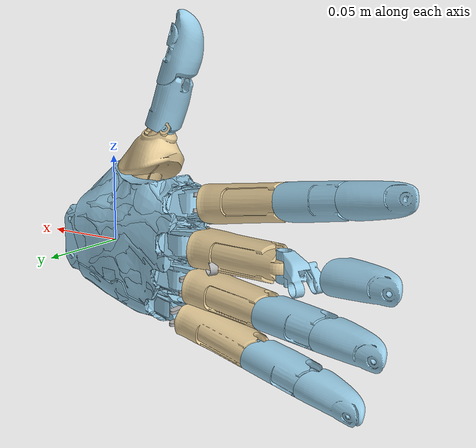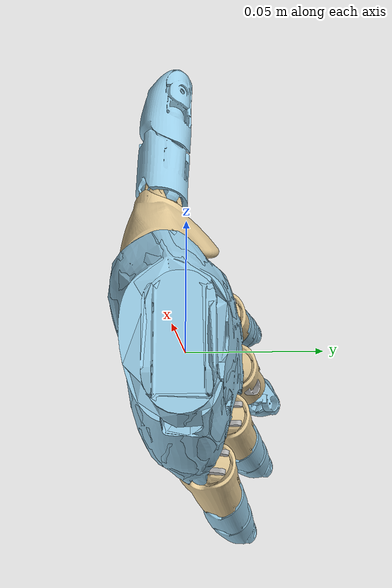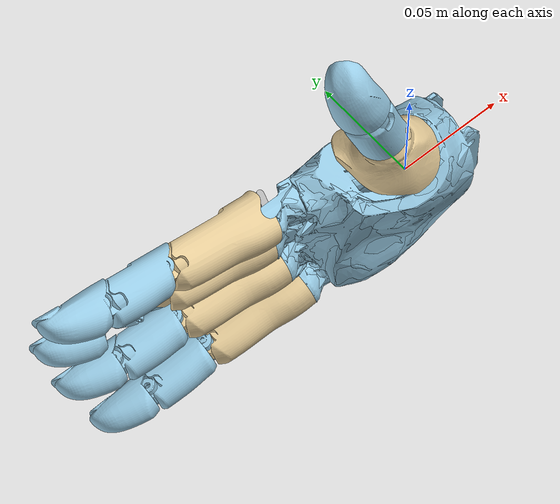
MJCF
<mujoco model="wujihand-right">
  <compiler angle="radian" />

  <option jacobian="sparse" integrator="RK4" timestep="0.002" solver="Newton" iterations="50" tolerance="1e-10" /><default><joint armature="0.0002" damping="0.0" /></default><asset>
    <mesh name="right_palm_link" content_type="model/stl" file="./assets/wujihand_full/right/right_palm_link.STL" />
    <mesh name="right_palm_link_collision" content_type="model/stl" file="./assets/wujihand_full/right/right_palm_link_simplified.STL" />
    <mesh name="right_finger1_link1" content_type="model/stl" file="./assets/wujihand_full/right/right_finger1_link1.STL" />
    <mesh name="right_finger1_link2" content_type="model/stl" file="./assets/wujihand_full/right/right_finger1_link2.STL" />
    <mesh name="right_finger1_link3" content_type="model/stl" file="./assets/wujihand_full/right/right_finger1_link3.STL" />
    <mesh name="right_finger1_link4" content_type="model/stl" file="./assets/wujihand_full/right/right_finger1_link4.STL" />
    <mesh name="right_finger1_tip_link" content_type="model/stl" file="./assets/wujihand_full/right/right_finger1_tip_link.STL" />
    <mesh name="right_finger1_link2_softbody" content_type="model/stl" file="./assets/wujihand_full/right/right_finger1_link2_softbody.STL" />
    <mesh name="right_finger2_link1" content_type="model/stl" file="./assets/wujihand_full/right/right_finger2_link1.STL" />
    <mesh name="right_finger2_link2" content_type="model/stl" file="./assets/wujihand_full/right/right_finger2_link2.STL" />
    <mesh name="right_finger2_link3" content_type="model/stl" file="./assets/wujihand_full/right/right_finger2_link3.STL" />
    <mesh name="right_finger2_link4" content_type="model/stl" file="./assets/wujihand_full/right/right_finger2_link4.STL" />
    <mesh name="right_finger2_tip_link" content_type="model/stl" file="./assets/wujihand_full/right/right_finger2_tip_link.STL" />
    <mesh name="right_finger3_link1" content_type="model/stl" file="./assets/wujihand_full/right/right_finger3_link1.STL" />
    <mesh name="right_finger3_link2" content_type="model/stl" file="./assets/wujihand_full/right/right_finger3_link2.STL" />
    <mesh name="right_finger3_link3" content_type="model/stl" file="./assets/wujihand_full/right/right_finger3_link3.STL" />
    <mesh name="right_finger3_link4" content_type="model/stl" file="./assets/wujihand_full/right/right_finger3_link4.STL" />
    <mesh name="right_finger3_tip_link" content_type="model/stl" file="./assets/wujihand_full/right/right_finger3_tip_link.STL" />
    <mesh name="right_finger4_link1" content_type="model/stl" file="./assets/wujihand_full/right/right_finger4_link1.STL" />
    <mesh name="right_finger4_link2" content_type="model/stl" file="./assets/wujihand_full/right/right_finger4_link2.STL" />
    <mesh name="right_finger4_link3" content_type="model/stl" file="./assets/wujihand_full/right/right_finger4_link3.STL" />
    <mesh name="right_finger4_link4" content_type="model/stl" file="./assets/wujihand_full/right/right_finger4_link4.STL" />
    <mesh name="right_finger4_tip_link" content_type="model/stl" file="./assets/wujihand_full/right/right_finger4_tip_link.STL" />
    <mesh name="right_finger5_link1" content_type="model/stl" file="./assets/wujihand_full/right/right_finger5_link1.STL" />
    <mesh name="right_finger5_link2" content_type="model/stl" file="./assets/wujihand_full/right/right_finger5_link2.STL" />
    <mesh name="right_finger5_link3" content_type="model/stl" file="./assets/wujihand_full/right/right_finger5_link3.STL" />
    <mesh name="right_finger5_link4" content_type="model/stl" file="./assets/wujihand_full/right/right_finger5_link4.STL" />
    <mesh name="right_finger5_tip_link" content_type="model/stl" file="./assets/wujihand_full/right/right_finger5_tip_link.STL" />
  </asset>

  <worldbody>

    <body name="root" pos="0 0 0" quat="1 0 0 0">
      <inertial pos="0 0 0" quat="1 0 0 0" mass="1.0" diaginertia="0.025 0.025 0.025"/>
      <body name="right_hand" pos="0.02 0.0 0.0" quat="0.5 0.5 -0.5 -0.5">
        <inertial pos="0 0 0" quat="1 0 0 0" mass="0.01" diaginertia="0.0001 0.0001 0.0001"/>

        <body name="right_palm_link"><inertial pos="-0.00253037866053038 0.00553321098392729 0.0708982153954314" mass="0.16914" quat="-0.01772809 -0.04274722 0.09308295 0.99458230" diaginertia="1.40677446e-04 9.58896475e-05 5.81329061e-05" /><geom type="mesh" contype="0" conaffinity="0" group="1" density="0" rgba="0.6 0.8 0.9 1" mesh="right_palm_link" />
        <geom type="mesh" rgba="0.6 0.8 0.9 1" mesh="right_palm_link_collision" contype="1" conaffinity="1" />
        <body name="right_finger1_link1" pos="0.0085244 0.020575 0.028712" quat="0.682219 -0.617669 0.0805047 -0.382859">
          <inertial pos="-0.00246155 -0.00144023 0.00778545" quat="0.904243 0.21652 0.0443878 -0.365368" mass="0.0075" diaginertia="3.37599e-07 3.01198e-07 2.11203e-07" />
          <joint name="right_finger1_joint1" pos="0 0 0" axis="0 1 0" range="0.0475 1.6033" actuatorfrcrange="-0.4452 0.4452" armature="0.0005" />
          <geom type="mesh" contype="0" conaffinity="0" group="1" density="0" rgba="0.7 0.7 0.7 1" mesh="right_finger1_link1" />
          <geom type="mesh" contype="2" conaffinity="2" density="0" rgba="0.7 0.7 0.7 1" mesh="right_finger1_link1" />
          <body name="right_finger1_link2" pos="-0.0047549 -0.0060191 0.014132" quat="0.726252 0.290851 -0.0855912 -0.616958">
            <inertial pos="-0.00136131 -8.49629e-05 0.0150055" quat="0.922357 0.0046622 0.0434518 0.383859" mass="0.0333518" diaginertia="4.21119e-06 4.0634e-06 2.19897e-06" />
            <joint name="right_finger1_joint2" pos="0 0 0" axis="0 1 0" range="-0.1387 0.9324" actuatorfrcrange="-0.4259 0.4259" armature="0.0005" />
            <geom type="mesh" contype="0" conaffinity="0" group="1" density="0" rgba="0.9 0.8 0.6 1" mesh="right_finger1_link2" />
            <geom type="mesh" contype="2" conaffinity="2" density="0" rgba="0.9 0.8 0.6 1" mesh="right_finger1_link2" />
            <geom type="mesh" contype="0" conaffinity="0" group="1" density="0" rgba="0.9 0.8 0.6 1" mesh="right_finger1_link2_softbody" />
            <geom type="mesh" rgba="0.9 0.8 0.6 1" mesh="right_finger1_link2_softbody" contype="2" conaffinity="2" />
            <body name="right_finger1_link3" pos="-0.000188721711752275 0.000991601088376131 0.0346635877340516" quat="0.815725 0.015003 0.0212383 0.577855">
              <inertial pos="0.000775215 -0.000210057 0.0127726" quat="0.999951 0 0.00989566 0" mass="0.0165" diaginertia="1.4604e-06 1.42e-06 4.49604e-07" />
              <joint name="right_finger1_joint3" pos="0 0 0" axis="0 1 0" range="-0.4642 1.5623" actuatorfrcrange="-0.1888 0.1888" />
              <geom type="mesh" contype="0" conaffinity="0" group="1" density="0" rgba="0.6 0.8 0.9 1" mesh="right_finger1_link3" />
              <geom type="mesh" contype="1" conaffinity="1" density="0" rgba="0.6 0.8 0.9 1" mesh="right_finger1_link3" />
              <body name="right_finger1_link4" pos="0 0 0.0295">
                <inertial pos="3.12488e-05 -0.0001544 0.0148945" quat="0.705239 -0.0513648 -0.0513648 0.705239" mass="0.0206" diaginertia="1.78779e-06 1.75044e-06 7.77343e-07" />
                <joint name="right_finger1_joint4" pos="0 0 0" axis="0 1 0" range="-0.4699 1.5568" actuatorfrcrange="-0.1468 0.1468" />
                <geom type="mesh" contype="0" conaffinity="0" group="1" density="0" rgba="0.6 0.8 0.9 1" mesh="right_finger1_link4" />
                <geom type="mesh" contype="1" conaffinity="1" density="0" rgba="0.6 0.8 0.9 1" mesh="right_finger1_link4" />
              </body>
            </body>
          </body>
        </body>
        <body name="right_finger2_link1" pos="-0.0058701 0.029434 0.091917" quat="0.991689 -0.0588295 -0.0292755 -0.110614">
          <inertial pos="-0.00132914 -2.06891e-08 0.000319815" quat="0.92388 0 0.382683 0" mass="0.0032" diaginertia="1.1e-07 7e-08 5e-08" />
          <joint name="right_finger2_joint1" pos="0 0 0" axis="0 1 0" range="-0.1585 1.5604" actuatorfrcrange="-0.6188 0.6188" armature="0.0005" />
          <geom type="mesh" contype="0" conaffinity="0" group="1" density="0" rgba="0.7 0.7 0.7 1" mesh="right_finger2_link1" />
          <geom type="mesh" contype="2" conaffinity="2" density="0" rgba="0.7 0.7 0.7 1" mesh="right_finger2_link1" />
          <body name="right_finger2_link2" pos="0.0022 0 0.004" quat="0.707105 0 0 0.707108">
            <inertial pos="1.85618e-06 0.00370979 0.0184837" quat="0.70703 0.0104245 0.0104245 0.70703" mass="0.033" diaginertia="6.34e-06 6.31472e-06 8.85281e-07" />
            <joint name="right_finger2_joint2" pos="0 0 0" axis="0 1 0" range="-0.37 0.37" actuatorfrcrange="-0.1822 0.1822" />
            <geom type="mesh" contype="0" conaffinity="0" group="1" density="0" rgba="0.9 0.8 0.6 1" mesh="right_finger2_link2" />
            <geom type="mesh" contype="2" conaffinity="2" density="0" rgba="0.9 0.8 0.6 1" mesh="right_finger2_link2" />
            <body name="right_finger2_link3" pos="0 0.0047503 0.043618" quat="0.706999 0 0 -0.707214">
              <inertial pos="0.000342045 1.41767e-05 0.0134814" quat="0.999892 0 -0.0146884 0" mass="0.0165" diaginertia="1.47088e-06 1.44e-06 4.49118e-07" />
              <joint name="right_finger2_joint3" pos="0 0 0" axis="0 1 0" range="-0.4777 1.5485" actuatorfrcrange="-0.2251 0.2251" />
              <geom type="mesh" contype="0" conaffinity="0" group="1" density="0" rgba="0.6 0.8 0.9 1" mesh="right_finger2_link3" />
              <geom type="mesh" contype="1" conaffinity="1" density="0" rgba="0.6 0.8 0.9 1" mesh="right_finger2_link3" />
              <body name="right_finger2_link4" pos="0 0 0.0295">
                <inertial pos="-0.000676323 -0.000125289 0.0107855" quat="0.995657 -0.00737551 -0.0927682 -0.0026585" mass="0.01718" diaginertia="1.17777e-06 1.07161e-06 4.06444e-07" />
                <joint name="right_finger2_joint4" pos="0 0 0" axis="0 1 0" range="-0.4683 1.5753" actuatorfrcrange="-0.217 0.217" />
                <geom type="mesh" contype="0" conaffinity="0" group="1" density="0" rgba="0.6 0.8 0.9 1" mesh="right_finger2_link4" />
                <geom type="mesh" contype="1" conaffinity="1" density="0" rgba="0.6 0.8 0.9 1" mesh="right_finger2_link4" />
              </body>
            </body>
          </body>
        </body>
        <body name="right_finger3_link1" pos="-0.01046 0.0074615 0.089544" quat="0.999048 0 -0.0436192 0">
          <inertial pos="-0.00132908 -7.69645e-07 0.000319983" quat="0.92388 0 0.382683 0" mass="0.0032" diaginertia="1.1e-07 7e-08 5e-08" />
          <joint name="right_finger3_joint1" pos="0 0 0" axis="0 1 0" range="-0.1644 1.5516" actuatorfrcrange="-0.6494 0.6494" armature="0.0005" />
          <geom type="mesh" contype="0" conaffinity="0" group="1" density="0" rgba="0.7 0.7 0.7 1" mesh="right_finger3_link1" />
          <geom type="mesh" contype="2" conaffinity="2" density="0" rgba="0.7 0.7 0.7 1" mesh="right_finger3_link1" />
          <body name="right_finger3_link2" pos="0.0022 0 0.004" quat="0.706893 0 0 0.70732">
            <inertial pos="1.86463e-06 0.0037098 0.0184837" quat="0.70703 0.0104245 0.0104245 0.70703" mass="0.033" diaginertia="6.34e-06 6.31472e-06 8.85281e-07" />
            <joint name="right_finger3_joint2" pos="0 0 0" axis="0 1 0" range="-0.37 0.37" actuatorfrcrange="-0.1827 0.1827" />
            <geom type="mesh" contype="0" conaffinity="0" group="1" density="0" rgba="0.9 0.8 0.6 1" mesh="right_finger3_link2" />
            <geom type="mesh" contype="2" conaffinity="2" density="0" rgba="0.9 0.8 0.6 1" mesh="right_finger3_link2" />
            <body name="right_finger3_link3" pos="0 0.00475 0.043618" quat="0.706999 0 0 -0.707214">
              <inertial pos="0.00033388 1.06802e-05 0.0134865" quat="0.999892 0 -0.0146884 0" mass="0.0165" diaginertia="1.47088e-06 1.44e-06 4.49118e-07" />
              <joint name="right_finger3_joint3" pos="0 0 0" axis="0 1 0" range="-0.4739 1.5512" actuatorfrcrange="-0.2078 0.2078" />
              <geom type="mesh" contype="0" conaffinity="0" group="1" density="0" rgba="0.6 0.8 0.9 1" mesh="right_finger3_link3" />
              <geom type="mesh" contype="1" conaffinity="1" density="0" rgba="0.6 0.8 0.9 1" mesh="right_finger3_link3" />
              <body name="right_finger3_link4" pos="0 0 0.0295">
                <inertial pos="-0.000676528 -0.00012547 0.0107852" quat="0.995657 -0.00737867 -0.0927683 -0.00263311" mass="0.01718" diaginertia="1.17777e-06 1.07161e-06 4.06449e-07" />
                <joint name="right_finger3_joint4" pos="0 0 0" axis="0 1 0" range="-0.4684 1.5745" actuatorfrcrange="-0.2018 0.2018" />
                <geom type="mesh" contype="0" conaffinity="0" group="1" density="0" rgba="0.6 0.8 0.9 1" mesh="right_finger3_link4" />
                <geom type="mesh" contype="1" conaffinity="1" density="0" rgba="0.6 0.8 0.9 1" mesh="right_finger3_link4" />
              </body>
            </body>
          </body>
        </body>
        <body name="right_finger4_link1" pos="-0.0076649 -0.013712 0.084429" quat="0.997789 0.0461019 -0.0405884 0.0254002">
          <inertial pos="-0.00132912 1.24361e-09 0.000319884" quat="0.92388 0 0.382683 0" mass="0.0032" diaginertia="1.1e-07 7e-08 5e-08" />
          <joint name="right_finger4_joint1" pos="0 0 0" axis="0 1 0" range="-0.1554 1.5585" actuatorfrcrange="-0.6389 0.6389" armature="0.0005" />
          <geom type="mesh" contype="0" conaffinity="0" group="1" density="0" rgba="0.7 0.7 0.7 1" mesh="right_finger4_link1" />
          <geom type="mesh" contype="2" conaffinity="2" density="0" rgba="0.7 0.7 0.7 1" mesh="right_finger4_link1" />
          <body name="right_finger4_link2" pos="0.0022 0 0.004" quat="0.707105 -0.00021385 -0.000213851 0.707108">
            <inertial pos="1.8495e-06 0.00370375 0.0185161" quat="0.70703 0.0104245 0.0104245 0.70703" mass="0.033" diaginertia="6.34e-06 6.31472e-06 8.85281e-07" />
            <joint name="right_finger4_joint2" pos="0 0 0" axis="0 1 0" range="-0.37 0.37" actuatorfrcrange="-0.1832 0.1832" />
            <geom type="mesh" contype="0" conaffinity="0" group="1" density="0" rgba="0.9 0.8 0.6 1" mesh="right_finger4_link2" />
            <geom type="mesh" contype="2" conaffinity="2" density="0" rgba="0.9 0.8 0.6 1" mesh="right_finger4_link2" />
            <body name="right_finger4_link3" pos="0 0.0047236 0.043621" quat="0.706999 0.000213883 0.000213818 -0.707214">
              <inertial pos="0.000319082 1.04411e-05 0.0135409" quat="0.999892 0 -0.0146884 0" mass="0.0165" diaginertia="1.47088e-06 1.44e-06 4.49118e-07" />
              <joint name="right_finger4_joint3" pos="0 0 0" axis="0 1 0" range="-0.4765 1.5487" actuatorfrcrange="-0.2249 0.2249" />
              <geom type="mesh" contype="0" conaffinity="0" group="1" density="0" rgba="0.6 0.8 0.9 1" mesh="right_finger4_link3" />
              <geom type="mesh" contype="1" conaffinity="1" density="0" rgba="0.6 0.8 0.9 1" mesh="right_finger4_link3" />
              <body name="right_finger4_link4" pos="0 0 0.0295">
                <inertial pos="-0.000714949 -0.000139908 0.0108407" quat="0.995656 -0.00751906 -0.0927907 -0.0015129" mass="0.01718" diaginertia="1.17803e-06 1.07186e-06 4.06934e-07" />
                <joint name="right_finger4_joint4" pos="0 0 0" axis="0 1 0" range="-0.4777 1.5634" actuatorfrcrange="-0.2044 0.2044" />
                <geom type="mesh" contype="0" conaffinity="0" group="1" density="0" rgba="0.6 0.8 0.9 1" mesh="right_finger4_link4" />
                <geom type="mesh" contype="1" conaffinity="1" density="0" rgba="0.6 0.8 0.9 1" mesh="right_finger4_link4" />
              </body>
            </body>
          </body>
        </body>
        <body name="right_finger5_link1" pos="-0.00226865 -0.0340011 0.0742813" quat="0.990869 0.0993173 -0.0383255 0.0827362">
          <inertial pos="-0.00132913 1.08611e-08 0.000319899" quat="0.92388 0 0.382683 0" mass="0.0032" diaginertia="1.1e-07 7e-08 5e-08" />
          <joint name="right_finger5_joint1" pos="0 0 0" axis="0 1 0" range="-0.1626 1.5585" actuatorfrcrange="-0.6441 0.6441" armature="0.0005" />
          <geom type="mesh" contype="0" conaffinity="0" group="1" density="0" rgba="0.7 0.7 0.7 1" mesh="right_finger5_link1" />
          <geom type="mesh" contype="2" conaffinity="2" density="0" rgba="0.7 0.7 0.7 1" mesh="right_finger5_link1" />
          <body name="right_finger5_link2" pos="0.0022 0 0.004" quat="0.707105 -0.00026748 -0.000267481 0.707108">
            <inertial pos="1.8497e-06 0.0037023 0.0193362" quat="0.70703 0.0104245 0.0104245 0.70703" mass="0.033" diaginertia="6.34e-06 6.31472e-06 8.85281e-07" />
            <joint name="right_finger5_joint2" pos="0 0 0" axis="0 1 0" range="-0.37 0.37" actuatorfrcrange="-0.1798 0.1798" />
            <geom type="mesh" contype="0" conaffinity="0" group="1" density="0" rgba="0.9 0.8 0.6 1" mesh="right_finger5_link2" />
            <geom type="mesh" contype="2" conaffinity="2" density="0" rgba="0.9 0.8 0.6 1" mesh="right_finger5_link2" />
            <body name="right_finger5_link3" pos="0 0.004717 0.043621" quat="0.706999 0.000267521 0.00026744 -0.707214">
              <inertial pos="0.000328501 5.05492e-06 0.0142853" quat="0.999892 0 -0.0146884 0" mass="0.0165" diaginertia="1.47088e-06 1.44e-06 4.49118e-07" />
              <joint name="right_finger5_joint3" pos="0 0 0" axis="0 1 0" range="-0.4768 1.549" actuatorfrcrange="-0.2384 0.2384" />
              <geom type="mesh" contype="0" conaffinity="0" group="1" density="0" rgba="0.6 0.8 0.9 1" mesh="right_finger5_link3" />
              <geom type="mesh" contype="1" conaffinity="1" density="0" rgba="0.6 0.8 0.9 1" mesh="right_finger5_link3" />
              <body name="right_finger5_link4" pos="0 0 0.0295">
                <inertial pos="-0.000754828 -0.000172323 0.0122783" quat="0.995656 -0.0075616 -0.0927984 -0.0011867" mass="0.01718" diaginertia="1.1781e-06 1.07193e-06 4.07073e-07" />
                <joint name="right_finger5_joint4" pos="0 0 0" axis="0 1 0" range="-0.4683 1.5735" actuatorfrcrange="-0.1866 0.1866" />
                <geom type="mesh" contype="0" conaffinity="0" group="1" density="0" rgba="0.6 0.8 0.9 1" mesh="right_finger5_link4" />
                <geom type="mesh" contype="1" conaffinity="1" density="0" rgba="0.6 0.8 0.9 1" mesh="right_finger5_link4" />
              </body>
            </body>
          </body>
        </body>
      </body>
    </body>
  </body></worldbody>
  <actuator>
    <position name="right_finger1_joint1_actuator" joint="right_finger1_joint1" kp="0.40844710645048043" kv="0.020882010257063675" ctrlrange="0.0475 1.6033" forcerange="-0.4452 0.4452" />
    <position name="right_finger1_joint2_actuator" joint="right_finger1_joint2" kp="0.6858601063643346" kv="0.030610939996373314" ctrlrange="-0.1387 0.9324" forcerange="-0.4259 0.4259" />
    <position name="right_finger1_joint3_actuator" joint="right_finger1_joint3" kp="0.2391112196099482" kv="0.010181475050560962" ctrlrange="-0.4642 1.5623" forcerange="-0.1888 0.1888" />
    <position name="right_finger1_joint4_actuator" joint="right_finger1_joint4" kp="0.20736128319711747" kv="0.00909698844675045" ctrlrange="-0.4699 1.5568" forcerange="-0.1468 0.1468" />
    <position name="right_finger2_joint1_actuator" joint="right_finger2_joint1" kp="0.37352218155860073" kv="0.01882274330029718" ctrlrange="-0.1585 1.5604" forcerange="-0.6188 0.6188" />
    <position name="right_finger2_joint2_actuator" joint="right_finger2_joint2" kp="0.45592448909027794" kv="0.019798167597016643" ctrlrange="-0.37 0.37" forcerange="-0.1822 0.1822" />
    <position name="right_finger2_joint3_actuator" joint="right_finger2_joint3" kp="0.24368366649522863" kv="0.010477031953162727" ctrlrange="-0.4777 1.5485" forcerange="-0.2251 0.2251" />
    <position name="right_finger2_joint4_actuator" joint="right_finger2_joint4" kp="0.18026971340925335" kv="0.008240212147903584" ctrlrange="-0.4683 1.5753" forcerange="-0.217 0.217" />
    <position name="right_finger3_joint1_actuator" joint="right_finger3_joint1" kp="0.3687093483646485" kv="0.01848622487024593" ctrlrange="-0.1644 1.5516" forcerange="-0.6494 0.6494" />
    <position name="right_finger3_joint2_actuator" joint="right_finger3_joint2" kp="0.4164253443634641" kv="0.018032947229953678" ctrlrange="-0.37 0.37" forcerange="-0.1827 0.1827" />
    <position name="right_finger3_joint3_actuator" joint="right_finger3_joint3" kp="0.22218607502059182" kv="0.009592200014076666" ctrlrange="-0.4739 1.5512" forcerange="-0.2078 0.2078" />
    <position name="right_finger3_joint4_actuator" joint="right_finger3_joint4" kp="0.19427606072023446" kv="0.009152994605972402" ctrlrange="-0.4684 1.5745" forcerange="-0.2018 0.2018" />
    <position name="right_finger4_joint1_actuator" joint="right_finger4_joint1" kp="0.35718151495111794" kv="0.018376606800780005" ctrlrange="-0.1554 1.5585" forcerange="-0.6389 0.6389" />
    <position name="right_finger4_joint2_actuator" joint="right_finger4_joint2" kp="0.42977315313086895" kv="0.01867700966212433" ctrlrange="-0.37 0.37" forcerange="-0.1832 0.1832" />
    <position name="right_finger4_joint3_actuator" joint="right_finger4_joint3" kp="0.24930151196247122" kv="0.01059512121009555" ctrlrange="-0.4765 1.5487" forcerange="-0.2249 0.2249" />
    <position name="right_finger4_joint4_actuator" joint="right_finger4_joint4" kp="0.2285032688178066" kv="0.009917602877441107" ctrlrange="-0.4777 1.5634" forcerange="-0.2044 0.2044" />
    <position name="right_finger5_joint1_actuator" joint="right_finger5_joint1" kp="0.3655325975433942" kv="0.018616960278988272" ctrlrange="-0.1626 1.5585" forcerange="-0.6441 0.6441" />
    <position name="right_finger5_joint2_actuator" joint="right_finger5_joint2" kp="0.41393113081120425" kv="0.018732177029667153" ctrlrange="-0.37 0.37" forcerange="-0.1798 0.1798" />
    <position name="right_finger5_joint3_actuator" joint="right_finger5_joint3" kp="0.22729367621965954" kv="0.00951005441616486" ctrlrange="-0.4768 1.549" forcerange="-0.2384 0.2384" />
    <position name="right_finger5_joint4_actuator" joint="right_finger5_joint4" kp="0.1964723550341816" kv="0.009017295241756363" ctrlrange="-0.4683 1.5735" forcerange="-0.1866 0.1866" />
  </actuator>
</mujoco>
